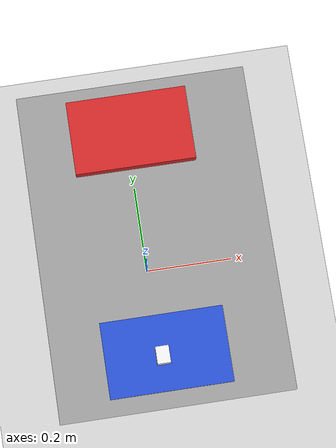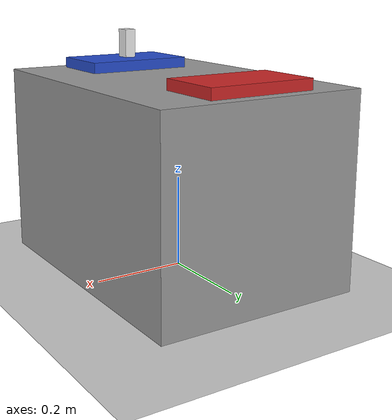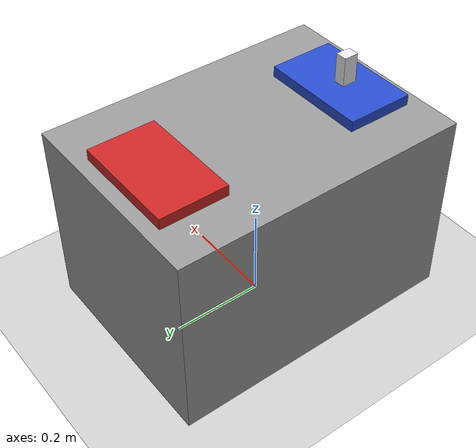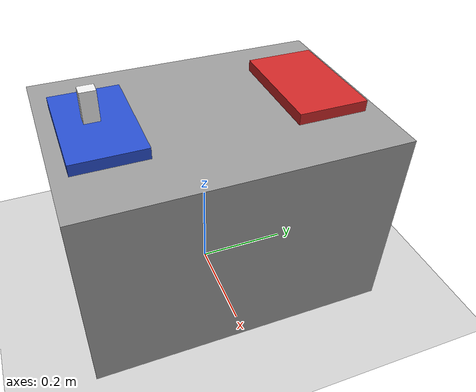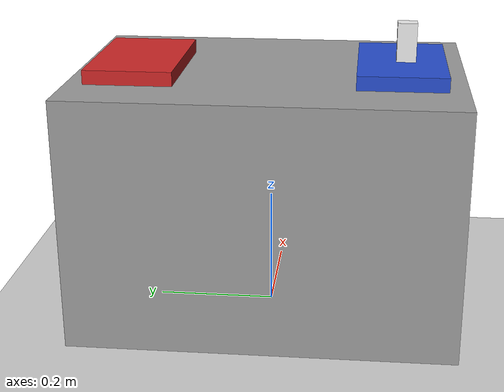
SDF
<?xml version="1.0" ?>
<sdf version="1.6">
  <world name="panda_pick_and_place">
    <physics type="ode">
      <real_time_update_rate>0</real_time_update_rate>
    </physics>
    <!--A global light source-->
    <include>
      <uri>model://sun</uri>
    </include>
    <!--A ground plane-->
    <include>
      <uri>model://ground_plane</uri>
    </include>
    <!--A Table-->
    <include>
      <uri>model://table</uri>
      <pose>0.016428 0.000584 0.0 0 -0 0</pose>
      <static>1</static>
    </include>
    <!--A pick tray-->
    <include>
      <uri>model://pick_tray</uri>
      <pose>0.008578 -0.215704 0.419773 0 -0 -0</pose>
      <static>1</static> <!--Hot Fix to prevent drifting see #206-->
    </include>
    <!--A place tray-->
    <include>
      <uri>model://place_tray</uri>
      <pose>0.004103 0.219654 0.419764 0 -0 -0</pose>
      <static>1</static> <!--Hot Fix to prevent drifting see #206-->
    </include>
    <!--A stone-->
    <include>
      <uri>model://stone</uri>
      <pose>0.000286 -0.221972 0.475172 0 -0 -0</pose>
    </include>
  </world>
</sdf>

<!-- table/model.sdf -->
<sdf version='1.6'>
  <model name='table'>
    <link name='link'>
      <pose>0 0 0.2099115 0 -0 0</pose>
      <inertial>
        <pose>0 0 0 0 -0 0</pose>
        <mass>10</mass>
        <inertia>
          <ixx>0.166667</ixx>
          <ixy>0</ixy>
          <ixz>0</ixz>
          <iyy>0.166667</iyy>
          <iyz>0</iyz>
          <izz>0.166667</izz>
        </inertia>
      </inertial>
      <self_collide>0</self_collide>
      <enable_wind>0</enable_wind>
      <kinematic>0</kinematic>
      <visual name='visual'>
        <pose>0 0 0 0 -0 0</pose>
        <geometry>
          <box>
            <size>0.453157 0.642049 0.419823</size>
          </box>
        </geometry>
        <material>
          <script>
            <name>Gazebo/Grey</name>
            <uri>file://media/materials/scripts/gazebo.material</uri>
          </script>
          <shader type='pixel'/>
        </material>
        <pose>0 0 0 0 -0 0</pose>
        <transparency>0</transparency>
        <cast_shadows>1</cast_shadows>
      </visual>
      <collision name='collision'>
        <laser_retro>0</laser_retro>
        <max_contacts>10</max_contacts>
        <pose>0 0 0 0 -0 0</pose>
        <geometry>
          <box>
            <size>0.453157 0.642049 0.419823</size>
          </box>
        </geometry>
        <surface>
          <friction>
            <ode>
              <mu>1</mu>
              <mu2>1</mu2>
              <fdir1>0 0 0</fdir1>
              <slip1>0</slip1>
              <slip2>0</slip2>
            </ode>
            <torsional>
              <coefficient>1</coefficient>
              <patch_radius>0</patch_radius>
              <surface_radius>0</surface_radius>
              <use_patch_radius>1</use_patch_radius>
              <ode>
                <slip>0</slip>
              </ode>
            </torsional>
          </friction>
          <bounce>
            <restitution_coefficient>0</restitution_coefficient>
            <threshold>1e+06</threshold>
          </bounce>
          <contact>
            <collide_without_contact>0</collide_without_contact>
            <collide_without_contact_bitmask>1</collide_without_contact_bitmask>
            <collide_bitmask>1</collide_bitmask>
            <ode>
              <soft_cfm>0</soft_cfm>
              <soft_erp>0.2</soft_erp>
              <kp>1e+13</kp>
              <kd>1</kd>
              <max_vel>0.01</max_vel>
              <min_depth>0</min_depth>
            </ode>
            <bullet>
              <split_impulse>1</split_impulse>
              <split_impulse_penetration_threshold>-0.01</split_impulse_penetration_threshold>
              <soft_cfm>0</soft_cfm>
              <soft_erp>0.2</soft_erp>
              <kp>1e+13</kp>
              <kd>1</kd>
            </bullet>
          </contact>
        </surface>
      </collision>
    </link>
    <static>1</static>
    <allow_auto_disable>1</allow_auto_disable>
  </model>
</sdf>

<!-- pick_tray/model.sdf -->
<sdf version='1.6'>
  <model name='pick_tray'>
    <link name='link'>
      <pose>0.0 0.0 0.011674 0 -0 0</pose>
      <inertial>
        <!--NOTE: Uses hard wood density (i.e 960 kg/m^3) to calculate the mass
        see https://qtimber.daf.qld.gov.au/guides/wood-density-and-hardness
        -->
        <mass>0.7634836885523328</mass>
        <inertia>
          <ixx>0.00137101</ixx>
          <ixy>0</ixy>
          <ixz>0</ixz>
          <iyy>0.00354935</iyy>
          <iyz>0</iyz>
          <izz>0.00485098</izz>
        </inertia>
        <pose>0 0 0 0 -0 0</pose>
      </inertial>
      <self_collide>0</self_collide>
      <enable_wind>0</enable_wind>
      <kinematic>0</kinematic>
      <pose>0 0 0 0 -0 0</pose>
      <visual name='visual'>
        <geometry>
          <box>
            <size>0.235035 0.144926 0.023348</size>
          </box>
        </geometry>
        <material>
          <script>
            <name>Gazebo/Blue</name>
            <uri>file://media/materials/scripts/gazebo.material</uri>
          </script>
          <shader type='pixel'/>
        </material>
        <pose>0 0 0 0 -0 0</pose>
        <transparency>0</transparency>
        <cast_shadows>1</cast_shadows>
      </visual>
      <collision name='collision'>
        <laser_retro>0</laser_retro>
        <max_contacts>10</max_contacts>
        <pose>0 0 0 0 -0 0</pose>
        <geometry>
          <box>
            <size>0.235035 0.144926 0.023348</size>
          </box>
        </geometry>
        <surface>
          <!--NOTE: Uses dynamic friction of wood on a brick surface
          see https://www.engineeringtoolbox.com/friction-coefficients-d_778.html
          -->
          <friction>
            <ode>
              <mu>0.6</mu>
              <mu2>0.6</mu2>
              <fdir1>0 0 0</fdir1>
              <slip1>0</slip1>
              <slip2>0</slip2>
            </ode>
            <torsional>
              <coefficient>1</coefficient>
              <patch_radius>0</patch_radius>
              <surface_radius>0</surface_radius>
              <use_patch_radius>1</use_patch_radius>
              <ode>
                <slip>0</slip>
              </ode>
            </torsional>
          </friction>
          <bounce>
            <restitution_coefficient>0</restitution_coefficient>
            <threshold>1e+06</threshold>
          </bounce>
          <contact>
            <collide_without_contact>0</collide_without_contact>
            <collide_without_contact_bitmask>1</collide_without_contact_bitmask>
            <collide_bitmask>1</collide_bitmask>
            <ode>
              <soft_cfm>0</soft_cfm>
              <soft_erp>0.2</soft_erp>
              <kp>1e+13</kp>
              <kd>1</kd>
              <max_vel>0.01</max_vel>
              <min_depth>0</min_depth>
            </ode>
            <bullet>
              <split_impulse>1</split_impulse>
              <split_impulse_penetration_threshold>-0.01</split_impulse_penetration_threshold>
              <soft_cfm>0</soft_cfm>
              <soft_erp>0.2</soft_erp>
              <kp>1e+13</kp>
              <kd>1</kd>
            </bullet>
          </contact>
        </surface>
      </collision>
    </link>
    <static>0</static>
    <allow_auto_disable>1</allow_auto_disable>
  </model>
</sdf>

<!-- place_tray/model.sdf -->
<sdf version='1.7'>
  <model name='place_tray'>
    <link name='link'>
      <pose>0.0 0.0 0.011674 0 -0 0</pose>
      <inertial>
        <!--NOTE: Uses hard wood density (i.e 960 kg/m^3) to calculate the mass
        see https://qtimber.daf.qld.gov.au/guides/wood-density-and-hardness
        -->
        <mass>0.7634836885523328</mass>
        <inertia>
          <ixx>0.00137101</ixx>
          <ixy>0</ixy>
          <ixz>0</ixz>
          <iyy>0.00354935</iyy>
          <iyz>0</iyz>
          <izz>0.00485098</izz>
        </inertia>
        <pose>0 0 0 0 -0 0</pose>
      </inertial>
      <self_collide>0</self_collide>
      <enable_wind>0</enable_wind>
      <kinematic>0</kinematic>
      <pose>0 0 0 0 -0 0</pose>
      <visual name='visual'>
        <geometry>
          <box>
            <size>0.235035 0.144926 0.023348</size>
          </box>
        </geometry>
        <material>
          <script>
            <name>Gazebo/Red</name>
            <uri>file://media/materials/scripts/gazebo.material</uri>
          </script>
          <shader type='pixel'/>
        </material>
        <pose>0 0 0 0 -0 0</pose>
        <transparency>0</transparency>
        <cast_shadows>1</cast_shadows>
      </visual>
      <collision name='collision'>
        <laser_retro>0</laser_retro>
        <max_contacts>10</max_contacts>
        <pose>0 0 0 0 -0 0</pose>
        <geometry>
          <box>
            <size>0.235035 0.144926 0.023348</size>
          </box>
        </geometry>
        <surface>
          <!--NOTE: Uses dynamic friction of wood on a brick surface
          see https://www.engineeringtoolbox.com/friction-coefficients-d_778.html
          -->
          <friction>
            <ode>
              <mu>0.6</mu>
              <mu2>0.6</mu2>
              <fdir1>0 0 0</fdir1>
              <slip1>0</slip1>
              <slip2>0</slip2>
            </ode>
            <torsional>
              <coefficient>1</coefficient>
              <patch_radius>0</patch_radius>
              <surface_radius>0</surface_radius>
              <use_patch_radius>1</use_patch_radius>
              <ode>
                <slip>0</slip>
              </ode>
            </torsional>
          </friction>
          <bounce>
            <restitution_coefficient>0</restitution_coefficient>
            <threshold>1e+06</threshold>
          </bounce>
          <contact>
            <collide_without_contact>0</collide_without_contact>
            <collide_without_contact_bitmask>1</collide_without_contact_bitmask>
            <collide_bitmask>1</collide_bitmask>
            <ode>
              <soft_cfm>0</soft_cfm>
              <soft_erp>0.2</soft_erp>
              <kp>1e+13</kp>
              <kd>1</kd>
              <max_vel>0.01</max_vel>
              <min_depth>0</min_depth>
            </ode>
            <bullet>
              <split_impulse>1</split_impulse>
              <split_impulse_penetration_threshold>-0.01</split_impulse_penetration_threshold>
              <soft_cfm>0</soft_cfm>
              <soft_erp>0.2</soft_erp>
              <kp>1e+13</kp>
              <kd>1</kd>
            </bullet>
          </contact>
        </surface>
      </collision>
    </link>
    <static>0</static>
    <allow_auto_disable>1</allow_auto_disable>
  </model>
</sdf>

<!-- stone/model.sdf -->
<sdf version='1.6'>
  <model name='stone'>
    <link name='link'>
      <pose>0.0 0.0 0.0 0 -0 0</pose>
      <inertial>
        <!--NOTE: Uses limestone density (i.e 2000 kg/m^3) to calculate the mass
        see https://en.wikipedia.org/wiki/Limestone
        -->
        <mass>0.1024</mass>
        <inertia>
          <ixx>4.369e-5</ixx>
          <ixy>0</ixy>
          <ixz>0</ixz>
          <iyy>4.028e-5</iyy>
          <iyz>0</iyz>
          <izz>1.407e-5</izz>
        </inertia>
        <pose>0 0 0 0 -0 0</pose>
      </inertial>
        <self_collide>0</self_collide>
      <kinematic>0</kinematic>
      <enable_wind>0</enable_wind>
      <pose>0 0 0 0 -0 0</pose>
      <visual name='visual'>
        <geometry>
          <box>
            <size>0.025 0.032 0.064</size>
          </box>
        </geometry>
        <material>
          <script>
            <uri>file://media/materials/scripts/gazebo.material</uri>
            <name>Gazebo/White</name>
          </script>
          <shader type='pixel'/>
        </material>
        <pose>0 0 0 0 -0 0</pose>
        <transparency>0</transparency>
        <cast_shadows>1</cast_shadows>
      </visual>
      <collision name='collision'>
        <laser_retro>0</laser_retro>
        <max_contacts>10</max_contacts>
        <pose>0 0 0 0 -0 0</pose>
        <geometry>
          <box>
            <size>0.025 0.032 0.064</size>
          </box>
        </geometry>
        <surface>
          <!--NOTE: Uses dynamic friction of brick on a wood surface
          see https://www.engineeringtoolbox.com/friction-coefficients-d_778.html
          -->
          <friction>
            <ode>
              <mu>0.6</mu>
              <mu2>0.6</mu2>
              <fdir1>0 0 0</fdir1>
              <slip1>0</slip1>
              <slip2>0</slip2>
            </ode>
            <torsional>
              <coefficient>1</coefficient>
              <patch_radius>0</patch_radius>
              <surface_radius>0</surface_radius>
              <use_patch_radius>1</use_patch_radius>
              <ode>
                <slip>0</slip>
              </ode>
            </torsional>
          </friction>
          <bounce>
            <restitution_coefficient>0</restitution_coefficient>
            <threshold>1e+06</threshold>
          </bounce>
          <contact>
            <collide_without_contact>0</collide_without_contact>
            <collide_without_contact_bitmask>1</collide_without_contact_bitmask>
            <collide_bitmask>1</collide_bitmask>
            <ode>
              <soft_cfm>0</soft_cfm>
              <soft_erp>0.2</soft_erp>
              <kp>1e+13</kp>
              <kd>1</kd>
              <max_vel>0</max_vel>
              <min_depth>0.003</min_depth>
            </ode>
            <bullet>
              <split_impulse>1</split_impulse>
              <split_impulse_penetration_threshold>-0.01</split_impulse_penetration_threshold>
              <soft_cfm>0</soft_cfm>
              <soft_erp>0.2</soft_erp>
              <kp>1e+13</kp>
              <kd>1</kd>
            </bullet>
          </contact>
        </surface>
      </collision>
    </link>
    <static>0</static>
    <allow_auto_disable>1</allow_auto_disable>
  </model>
</sdf>
